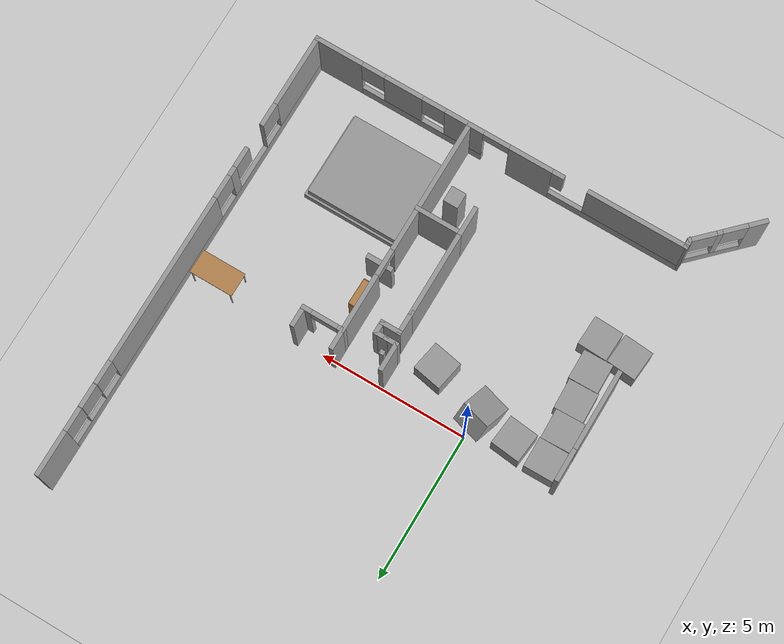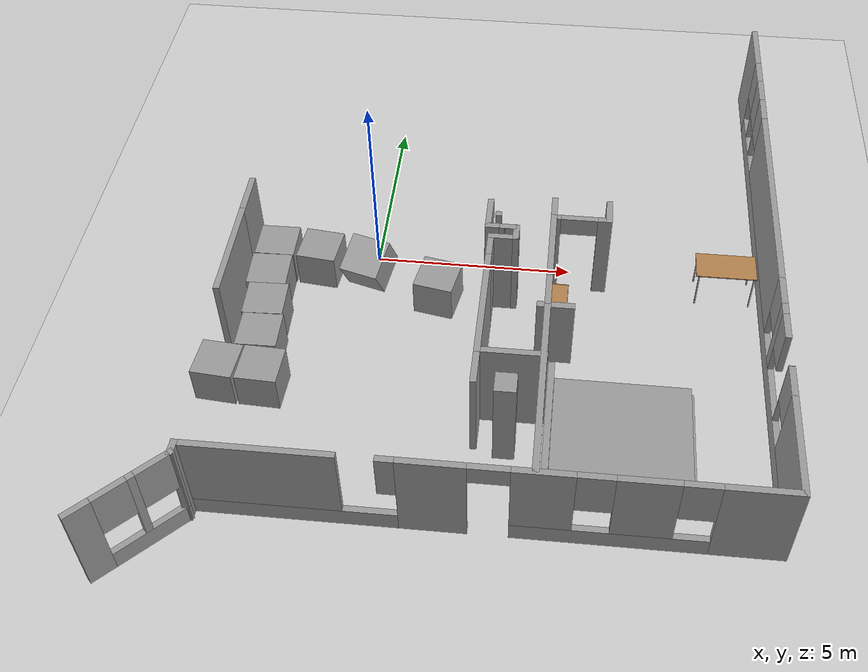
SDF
<sdf version="1.6">
 <world name="default">
  <model name="ground_plane">
   <static>1</static>
   <link name="link">
    <collision name="collision">
     <geometry><plane><normal>0 0 1</normal><size>100 100</size></plane></geometry>
     <surface>
      <contact><collide_bitmask>65535</collide_bitmask></contact>
      <friction><ode><mu>100</mu><mu2>50</mu2></ode></friction>
     </surface>
    </collision>
    <visual name="visual">
     <cast_shadows>0</cast_shadows>
     <geometry><plane><normal>0 0 1</normal><size>100 100</size></plane></geometry>
     <material>
      <script><uri>file://media/materials/scripts/gazebo.material</uri><name>Gazebo/Grey</name></script>
     </material>
    </visual>
   </link>
  </model>
  <model name="spruce1st">
   <pose>-3.08285 0.81707 0 0 -0 0</pose>
   <link name="Door_8">
    <collision name="Door_8_Collision">
     <geometry><box><size>0.9 0.17 2</size></box></geometry>
     <pose>0 0 1 0 -0 0</pose>
    </collision>
    <visual name="Door_8_Visual">
     <pose>0 0 1 0 -0 0</pose>
     <geometry><box><size>0.9 0.17 2</size></box></geometry>
     <material>
      <script><uri>file://media/materials/scripts/gazebo.material</uri><name>Gazebo/Grey</name></script>
     </material>
    </visual>
    <pose>7.80127 -3.77874 0 0 -0 0</pose>
   </link>
   <link name="Wall_101">
    <collision name="Wall_101_Collision">
     <geometry><box><size>0.75 0.15 2.5</size></box></geometry>
     <pose>0 0 1.25 0 -0 0</pose>
    </collision>
    <visual name="Wall_101_Visual">
     <pose>0 0 1.25 0 -0 0</pose>
     <geometry><box><size>0.75 0.15 2.5</size></box></geometry>
     <material>
      <script><uri>file://media/materials/scripts/gazebo.material</uri><name>Gazebo/Grey</name></script>
      <ambient>1 1 1 1</ambient>
     </material>
     <meta><layer>0</layer></meta>
    </visual>
    <pose>6.42946 -2.1381 0 0 -0 0</pose>
   </link>
   <link name="Wall_106">
    <collision name="Wall_106_Collision">
     <geometry><box><size>0.15 0.15 2.5</size></box></geometry>
     <pose>0 0 1.25 0 -0 0</pose>
    </collision>
    <visual name="Wall_106_Visual">
     <pose>0 0 1.25 0 -0 0</pose>
     <geometry><box><size>0.15 0.15 2.5</size></box></geometry>
     <material>
      <script><uri>file://media/materials/scripts/gazebo.material</uri><name>Gazebo/Grey</name></script>
      <ambient>0 0 0 0</ambient>
     </material>
     <meta><layer>0</layer></meta>
    </visual>
    <pose>6.25851 -1.36488 0 0 -0 0</pose>
   </link>
   <link name="Wall_107">
    <collision name="Wall_107_Collision">
     <geometry><box><size>0.5 0.15 2.5</size></box></geometry>
     <pose>0 0 1.25 0 -0 0</pose>
    </collision>
    <visual name="Wall_107_Visual">
     <pose>0 0 1.25 0 -0 0</pose>
     <geometry><box><size>0.5 0.15 2.5</size></box></geometry>
     <material>
      <script><uri>file://media/materials/scripts/gazebo.material</uri><name>Gazebo/Grey</name></script>
      <ambient>1 1 1 1</ambient>
     </material>
     <meta><layer>0</layer></meta>
    </visual>
    <pose>6.72946 -1.96311 0 0 -0 1.5708</pose>
   </link>
   <link name="Wall_108">
    <collision name="Wall_108_Collision">
     <geometry><box><size>0.5 0.15 2.5</size></box></geometry>
     <pose>0 0 1.25 0 -0 0</pose>
    </collision>
    <visual name="Wall_108_Visual">
     <pose>0 0 1.25 0 -0 0</pose>
     <geometry><box><size>0.5 0.15 2.5</size></box></geometry>
     <material>
      <script><uri>file://media/materials/scripts/gazebo.material</uri><name>Gazebo/Grey</name></script>
      <ambient>1 1 1 1</ambient>
     </material>
     <meta><layer>0</layer></meta>
    </visual>
    <pose>6.55446 -1.78811 0 0 -0 3.14159</pose>
   </link>
   <link name="Wall_109">
    <collision name="Wall_109_Collision">
     <geometry><box><size>0.5 0.15 2.5</size></box></geometry>
     <pose>0 0 1.25 0 -0 0</pose>
    </collision>
    <visual name="Wall_109_Visual">
     <pose>0 0 1.25 0 -0 0</pose>
     <geometry><box><size>0.5 0.15 2.5</size></box></geometry>
     <material>
      <script><uri>file://media/materials/scripts/gazebo.material</uri><name>Gazebo/Grey</name></script>
      <ambient>1 1 1 1</ambient>
     </material>
     <meta><layer>0</layer></meta>
    </visual>
    <pose>6.20446 -1.78811 0 0 -0 3.14159</pose>
   </link>
   <link name="Wall_110">
    <collision name="Wall_110_Collision">
     <geometry><box><size>1 0.15 2.5</size></box></geometry>
     <pose>0 0 1.25 0 -0 0</pose>
    </collision>
    <visual name="Wall_110_Visual">
     <pose>0 0 1.25 0 -0 0</pose>
     <geometry><box><size>1 0.15 2.5</size></box></geometry>
     <material>
      <script><uri>file://media/materials/scripts/gazebo.material</uri><name>Gazebo/Grey</name></script>
      <ambient>1 1 1 1</ambient>
     </material>
     <meta><layer>0</layer></meta>
    </visual>
    <pose>6.02946 -1.3631 0 0 -0 1.5708</pose>
   </link>
   <link name="Wall_122">
    <pose>-0.696788 -9.83939 0 0 -0 0.785398</pose>
    <visual name="Wall_122_Visual_0">
     <pose>-0.939341 0 1.25 0 -0 0</pose>
     <geometry><box><size>0.621317 0.15 2.5</size></box></geometry>
     <material>
      <script><uri>file://media/materials/scripts/gazebo.material</uri><name>Gazebo/Grey</name></script>
      <ambient>1 1 1 1</ambient>
     </material>
     <meta><layer>0</layer></meta>
    </visual>
    <collision name="Wall_122_Collision_0">
     <geometry><box><size>0.621317 0.15 2.5</size></box></geometry>
     <pose>-0.939341 0 1.25 0 -0 0</pose>
    </collision>
    <visual name="Wall_122_Visual_1">
     <pose>0.310659 0 0.25 0 -0 0</pose>
     <geometry><box><size>1.87868 0.15 0.5</size></box></geometry>
     <material>
      <script><uri>file://media/materials/scripts/gazebo.material</uri><name>Gazebo/Grey</name></script>
      <ambient>1 1 1 1</ambient>
     </material>
     <meta><layer>0</layer></meta>
    </visual>
    <collision name="Wall_122_Collision_1">
     <geometry><box><size>1.87868 0.15 0.5</size></box></geometry>
     <pose>0.310659 0 0.25 0 -0 0</pose>
    </collision>
    <visual name="Wall_122_Visual_2">
     <pose>0.257222 0 1.5 0 -0 0</pose>
     <geometry><box><size>0.17181 0.15 2</size></box></geometry>
     <material>
      <script><uri>file://media/materials/scripts/gazebo.material</uri><name>Gazebo/Grey</name></script>
      <ambient>1 1 1 1</ambient>
     </material>
     <meta><layer>0</layer></meta>
    </visual>
    <collision name="Wall_122_Collision_2">
     <geometry><box><size>0.17181 0.15 2</size></box></geometry>
     <pose>0.257222 0 1.5 0 -0 0</pose>
    </collision>
    <visual name="Wall_122_Visual_3">
     <pose>1.19656 0 1.5 0 -0 0</pose>
     <geometry><box><size>0.106873 0.15 2</size></box></geometry>
     <material>
      <script><uri>file://media/materials/scripts/gazebo.material</uri><name>Gazebo/Grey</name></script>
      <ambient>1 1 1 1</ambient>
     </material>
     <meta><layer>0</layer></meta>
    </visual>
    <collision name="Wall_122_Collision_3">
     <geometry><box><size>0.106873 0.15 2</size></box></geometry>
     <pose>1.19656 0 1.5 0 -0 0</pose>
    </collision>
    <visual name="Wall_122_Visual_4">
     <pose>-0.228683 0 1.9 0 -0 0</pose>
     <geometry><box><size>0.8 0.15 1.2</size></box></geometry>
     <material>
      <script><uri>file://media/materials/scripts/gazebo.material</uri><name>Gazebo/Grey</name></script>
      <ambient>1 1 1 1</ambient>
     </material>
     <meta><layer>0</layer></meta>
    </visual>
    <collision name="Wall_122_Collision_4">
     <geometry><box><size>0.8 0.15 1.2</size></box></geometry>
     <pose>-0.228683 0 1.9 0 -0 0</pose>
    </collision>
    <visual name="Wall_122_Visual_5">
     <pose>0.743127 0 1.9 0 -0 0</pose>
     <geometry><box><size>0.8 0.15 1.2</size></box></geometry>
     <material>
      <script><uri>file://media/materials/scripts/gazebo.material</uri><name>Gazebo/Grey</name></script>
      <ambient>1 1 1 1</ambient>
     </material>
     <meta><layer>0</layer></meta>
    </visual>
    <collision name="Wall_122_Collision_5">
     <geometry><box><size>0.8 0.15 1.2</size></box></geometry>
     <pose>0.743127 0 1.9 0 -0 0</pose>
    </collision>
   </link>
   <link name="Wall_126">
    <pose>6.5721 -8.75726 0 0 -0 3.14159</pose>
    <visual name="Wall_126_Visual_0">
     <pose>-5.65811 0 1.25 0 -0 0</pose>
     <geometry><box><size>1.68378 0.15 2.5</size></box></geometry>
     <material>
      <script><uri>file://media/materials/scripts/gazebo.material</uri><name>Gazebo/Grey</name></script>
      <ambient>1 1 1 1</ambient>
     </material>
     <meta><layer>0</layer></meta>
    </visual>
    <collision name="Wall_126_Collision_0">
     <geometry><box><size>1.68378 0.15 2.5</size></box></geometry>
     <pose>-5.65811 0 1.25 0 -0 0</pose>
    </collision>
    <visual name="Wall_126_Visual_1">
     <pose>1.10617 0 1.25 0 -0 0</pose>
     <geometry><box><size>1.49148 0.15 2.5</size></box></geometry>
     <material>
      <script><uri>file://media/materials/scripts/gazebo.material</uri><name>Gazebo/Grey</name></script>
      <ambient>1 1 1 1</ambient>
     </material>
     <meta><layer>0</layer></meta>
    </visual>
    <collision name="Wall_126_Collision_1">
     <geometry><box><size>1.49148 0.15 2.5</size></box></geometry>
     <pose>1.10617 0 1.25 0 -0 0</pose>
    </collision>
    <visual name="Wall_126_Visual_2">
     <pose>-2.67789 0 0.25 0 -0 0</pose>
     <geometry><box><size>4.27664 0.15 0.5</size></box></geometry>
     <material>
      <script><uri>file://media/materials/scripts/gazebo.material</uri><name>Gazebo/Grey</name></script>
      <ambient>1 1 1 1</ambient>
     </material>
     <meta><layer>0</layer></meta>
    </visual>
    <collision name="Wall_126_Collision_2">
     <geometry><box><size>4.27664 0.15 0.5</size></box></geometry>
     <pose>-2.67789 0 0.25 0 -0 0</pose>
    </collision>
    <visual name="Wall_126_Visual_3">
     <pose>4.17595 0 0.25 0 -0 0</pose>
     <geometry><box><size>4.6481 0.15 0.5</size></box></geometry>
     <material>
      <script><uri>file://media/materials/scripts/gazebo.material</uri><name>Gazebo/Grey</name></script>
      <ambient>1 1 1 1</ambient>
     </material>
     <meta><layer>0</layer></meta>
    </visual>
    <collision name="Wall_126_Collision_3">
     <geometry><box><size>4.6481 0.15 0.5</size></box></geometry>
     <pose>4.17595 0 0.25 0 -0 0</pose>
    </collision>
    <visual name="Wall_126_Visual_4">
     <pose>-3.34728 0 1.5 0 -0 0</pose>
     <geometry><box><size>1.33787 0.15 2</size></box></geometry>
     <material>
      <script><uri>file://media/materials/scripts/gazebo.material</uri><name>Gazebo/Grey</name></script>
      <ambient>1 1 1 1</ambient>
     </material>
     <meta><layer>0</layer></meta>
    </visual>
    <collision name="Wall_126_Collision_4">
     <geometry><box><size>1.33787 0.15 2</size></box></geometry>
     <pose>-3.34728 0 1.5 0 -0 0</pose>
    </collision>
    <visual name="Wall_126_Visual_5">
     <pose>-1.20896 0 1.5 0 -0 0</pose>
     <geometry><box><size>1.33877 0.15 2</size></box></geometry>
     <material>
      <script><uri>file://media/materials/scripts/gazebo.material</uri><name>Gazebo/Grey</name></script>
      <ambient>1 1 1 1</ambient>
     </material>
     <meta><layer>0</layer></meta>
    </visual>
    <collision name="Wall_126_Collision_5">
     <geometry><box><size>1.33877 0.15 2</size></box></geometry>
     <pose>-1.20896 0 1.5 0 -0 0</pose>
    </collision>
    <visual name="Wall_126_Visual_6">
     <pose>-1.20896 0 1.5 0 -0 0</pose>
     <geometry><box><size>1.33877 0.15 2</size></box></geometry>
     <material>
      <script><uri>file://media/materials/scripts/gazebo.material</uri><name>Gazebo/Grey</name></script>
      <ambient>1 1 1 1</ambient>
     </material>
     <meta><layer>0</layer></meta>
    </visual>
    <collision name="Wall_126_Collision_6">
     <geometry><box><size>1.33877 0.15 2</size></box></geometry>
     <pose>-1.20896 0 1.5 0 -0 0</pose>
    </collision>
    <visual name="Wall_126_Visual_7">
     <pose>4.77956 0 1.5 0 -0 0</pose>
     <geometry><box><size>3.44088 0.15 2</size></box></geometry>
     <material>
      <script><uri>file://media/materials/scripts/gazebo.material</uri><name>Gazebo/Grey</name></script>
      <ambient>1 1 1 1</ambient>
     </material>
     <meta><layer>0</layer></meta>
    </visual>
    <collision name="Wall_126_Collision_7">
     <geometry><box><size>3.44088 0.15 2</size></box></geometry>
     <pose>4.77956 0 1.5 0 -0 0</pose>
    </collision>
    <visual name="Wall_126_Visual_8">
     <pose>-4.41622 0 1.9 0 -0 0</pose>
     <geometry><box><size>0.8 0.15 1.2</size></box></geometry>
     <material>
      <script><uri>file://media/materials/scripts/gazebo.material</uri><name>Gazebo/Grey</name></script>
      <ambient>1 1 1 1</ambient>
     </material>
     <meta><layer>0</layer></meta>
    </visual>
    <collision name="Wall_126_Collision_8">
     <geometry><box><size>0.8 0.15 1.2</size></box></geometry>
     <pose>-4.41622 0 1.9 0 -0 0</pose>
    </collision>
    <visual name="Wall_126_Visual_9">
     <pose>2.05551 0 1.9 0 -0 0</pose>
     <geometry><box><size>0.407213 0.15 1.2</size></box></geometry>
     <material>
      <script><uri>file://media/materials/scripts/gazebo.material</uri><name>Gazebo/Grey</name></script>
      <ambient>1 1 1 1</ambient>
     </material>
     <meta><layer>0</layer></meta>
    </visual>
    <collision name="Wall_126_Collision_9">
     <geometry><box><size>0.407213 0.15 1.2</size></box></geometry>
     <pose>2.05551 0 1.9 0 -0 0</pose>
    </collision>
    <visual name="Wall_126_Visual_10">
     <pose>-2.27834 0 1.9 0 -0 0</pose>
     <geometry><box><size>0.8 0.15 1.2</size></box></geometry>
     <material>
      <script><uri>file://media/materials/scripts/gazebo.material</uri><name>Gazebo/Grey</name></script>
      <ambient>1 1 1 1</ambient>
     </material>
     <meta><layer>0</layer></meta>
    </visual>
    <collision name="Wall_126_Collision_10">
     <geometry><box><size>0.8 0.15 1.2</size></box></geometry>
     <pose>-2.27834 0 1.9 0 -0 0</pose>
    </collision>
    <visual name="Wall_126_Visual_11">
     <pose>-0.089573 0 2.25 0 -0 0</pose>
     <geometry><box><size>0.9 0.15 0.5</size></box></geometry>
     <material>
      <script><uri>file://media/materials/scripts/gazebo.material</uri><name>Gazebo/Grey</name></script>
      <ambient>1 1 1 1</ambient>
     </material>
     <meta><layer>0</layer></meta>
    </visual>
    <collision name="Wall_126_Collision_11">
     <geometry><box><size>0.9 0.15 0.5</size></box></geometry>
     <pose>-0.089573 0 2.25 0 -0 0</pose>
    </collision>
    <visual name="Wall_126_Visual_12">
     <pose>-0.089573 0 2.25 0 -0 0</pose>
     <geometry><box><size>0.9 0.15 0.5</size></box></geometry>
     <material>
      <script><uri>file://media/materials/scripts/gazebo.material</uri><name>Gazebo/Grey</name></script>
      <ambient>1 1 1 1</ambient>
     </material>
     <meta><layer>0</layer></meta>
    </visual>
    <collision name="Wall_126_Collision_12">
     <geometry><box><size>0.9 0.15 0.5</size></box></geometry>
     <pose>-0.089573 0 2.25 0 -0 0</pose>
    </collision>
   </link>
   <link name="Wall_127">
    <collision name="Wall_127_Collision">
     <geometry><box><size>0.401612 0.15 2.5</size></box></geometry>
     <pose>0 0 1.25 0 -0 0</pose>
    </collision>
    <visual name="Wall_127_Visual">
     <pose>0 0 1.25 0 -0 0</pose>
     <geometry><box><size>0.401612 0.15 2.5</size></box></geometry>
     <material>
      <script><uri>file://media/materials/scripts/gazebo.material</uri><name>Gazebo/Grey</name></script>
      <ambient>1 1 1 1</ambient>
     </material>
     <meta><layer>0</layer></meta>
    </visual>
    <pose>0.140582 -8.8829 0 0 0 -1.62264</pose>
   </link>
   <link name="Wall_41">
    <pose>12.9971 -0.957263 0 0 0 -1.5708</pose>
    <visual name="Wall_41_Visual_0">
     <pose>-7.10477 0 1.25 0 -0 0</pose>
     <geometry><box><size>1.54045 0.15 2.5</size></box></geometry>
     <material>
      <script><uri>file://media/materials/scripts/gazebo.material</uri><name>Gazebo/Grey</name></script>
      <ambient>1 1 1 1</ambient>
     </material>
     <meta><layer>0</layer></meta>
    </visual>
    <collision name="Wall_41_Collision_0">
     <geometry><box><size>1.54045 0.15 2.5</size></box></geometry>
     <pose>-7.10477 0 1.25 0 -0 0</pose>
    </collision>
    <visual name="Wall_41_Visual_1">
     <pose>0.770227 0 0.25 0 -0 0</pose>
     <geometry><box><size>14.2095 0.15 0.5</size></box></geometry>
     <material>
      <script><uri>file://media/materials/scripts/gazebo.material</uri><name>Gazebo/Grey</name></script>
      <ambient>1 1 1 1</ambient>
     </material>
     <meta><layer>0</layer></meta>
    </visual>
    <collision name="Wall_41_Collision_1">
     <geometry><box><size>14.2095 0.15 0.5</size></box></geometry>
     <pose>0.770227 0 0.25 0 -0 0</pose>
    </collision>
    <visual name="Wall_41_Visual_2">
     <pose>-5.52733 0 1.5 0 -0 0</pose>
     <geometry><box><size>0.014427 0.15 2</size></box></geometry>
     <material>
      <script><uri>file://media/materials/scripts/gazebo.material</uri><name>Gazebo/Grey</name></script>
      <ambient>1 1 1 1</ambient>
     </material>
     <meta><layer>0</layer></meta>
    </visual>
    <collision name="Wall_41_Collision_2">
     <geometry><box><size>0.014427 0.15 2</size></box></geometry>
     <pose>-5.52733 0 1.5 0 -0 0</pose>
    </collision>
    <visual name="Wall_41_Visual_3">
     <pose>-4.71291 0 1.5 0 -0 0</pose>
     <geometry><box><size>0.014427 0.15 2</size></box></geometry>
     <material>
      <script><uri>file://media/materials/scripts/gazebo.material</uri><name>Gazebo/Grey</name></script>
      <ambient>1 1 1 1</ambient>
     </material>
     <meta><layer>0</layer></meta>
    </visual>
    <collision name="Wall_41_Collision_3">
     <geometry><box><size>0.014427 0.15 2</size></box></geometry>
     <pose>-4.71291 0 1.5 0 -0 0</pose>
    </collision>
    <visual name="Wall_41_Visual_4">
     <pose>-0.997084 0 1.5 0 -0 0</pose>
     <geometry><box><size>5.81722 0.15 2</size></box></geometry>
     <material>
      <script><uri>file://media/materials/scripts/gazebo.material</uri><name>Gazebo/Grey</name></script>
      <ambient>1 1 1 1</ambient>
     </material>
     <meta><layer>0</layer></meta>
    </visual>
    <collision name="Wall_41_Collision_4">
     <geometry><box><size>5.81722 0.15 2</size></box></geometry>
     <pose>-0.997084 0 1.5 0 -0 0</pose>
    </collision>
    <visual name="Wall_41_Visual_5">
     <pose>2.87144 0 1.5 0 -0 0</pose>
     <geometry><box><size>0.319837 0.15 2</size></box></geometry>
     <material>
      <script><uri>file://media/materials/scripts/gazebo.material</uri><name>Gazebo/Grey</name></script>
      <ambient>1 1 1 1</ambient>
     </material>
     <meta><layer>0</layer></meta>
    </visual>
    <collision name="Wall_41_Collision_5">
     <geometry><box><size>0.319837 0.15 2</size></box></geometry>
     <pose>2.87144 0 1.5 0 -0 0</pose>
    </collision>
    <visual name="Wall_41_Visual_6">
     <pose>4.5512 0 1.5 0 -0 0</pose>
     <geometry><box><size>0.014426 0.15 2</size></box></geometry>
     <material>
      <script><uri>file://media/materials/scripts/gazebo.material</uri><name>Gazebo/Grey</name></script>
      <ambient>1 1 1 1</ambient>
     </material>
     <meta><layer>0</layer></meta>
    </visual>
    <collision name="Wall_41_Collision_6">
     <geometry><box><size>0.014426 0.15 2</size></box></geometry>
     <pose>4.5512 0 1.5 0 -0 0</pose>
    </collision>
    <visual name="Wall_41_Visual_7">
     <pose>6.61671 0 1.5 0 -0 0</pose>
     <geometry><box><size>2.51659 0.15 2</size></box></geometry>
     <material>
      <script><uri>file://media/materials/scripts/gazebo.material</uri><name>Gazebo/Grey</name></script>
      <ambient>1 1 1 1</ambient>
     </material>
     <meta><layer>0</layer></meta>
    </visual>
    <collision name="Wall_41_Collision_7">
     <geometry><box><size>2.51659 0.15 2</size></box></geometry>
     <pose>6.61671 0 1.5 0 -0 0</pose>
    </collision>
    <visual name="Wall_41_Visual_8">
     <pose>-5.93455 0 1.9 0 -0 0</pose>
     <geometry><box><size>0.8 0.15 1.2</size></box></geometry>
     <material>
      <script><uri>file://media/materials/scripts/gazebo.material</uri><name>Gazebo/Grey</name></script>
      <ambient>1 1 1 1</ambient>
     </material>
     <meta><layer>0</layer></meta>
    </visual>
    <collision name="Wall_41_Collision_8">
     <geometry><box><size>0.8 0.15 1.2</size></box></geometry>
     <pose>-5.93455 0 1.9 0 -0 0</pose>
    </collision>
    <visual name="Wall_41_Visual_9">
     <pose>-5.12012 0 1.9 0 -0 0</pose>
     <geometry><box><size>0.8 0.15 1.2</size></box></geometry>
     <material>
      <script><uri>file://media/materials/scripts/gazebo.material</uri><name>Gazebo/Grey</name></script>
      <ambient>1 1 1 1</ambient>
     </material>
     <meta><layer>0</layer></meta>
    </visual>
    <collision name="Wall_41_Collision_9">
     <geometry><box><size>0.8 0.15 1.2</size></box></geometry>
     <pose>-5.12012 0 1.9 0 -0 0</pose>
    </collision>
    <visual name="Wall_41_Visual_10">
     <pose>-4.30569 0 1.9 0 -0 0</pose>
     <geometry><box><size>0.8 0.15 1.2</size></box></geometry>
     <material>
      <script><uri>file://media/materials/scripts/gazebo.material</uri><name>Gazebo/Grey</name></script>
      <ambient>1 1 1 1</ambient>
     </material>
     <meta><layer>0</layer></meta>
    </visual>
    <collision name="Wall_41_Collision_10">
     <geometry><box><size>0.8 0.15 1.2</size></box></geometry>
     <pose>-4.30569 0 1.9 0 -0 0</pose>
    </collision>
    <visual name="Wall_41_Visual_11">
     <pose>2.31152 0 1.9 0 -0 0</pose>
     <geometry><box><size>0.8 0.15 1.2</size></box></geometry>
     <material>
      <script><uri>file://media/materials/scripts/gazebo.material</uri><name>Gazebo/Grey</name></script>
      <ambient>1 1 1 1</ambient>
     </material>
     <meta><layer>0</layer></meta>
    </visual>
    <collision name="Wall_41_Collision_11">
     <geometry><box><size>0.8 0.15 1.2</size></box></geometry>
     <pose>2.31152 0 1.9 0 -0 0</pose>
    </collision>
    <visual name="Wall_41_Visual_12">
     <pose>3.38767 0 1.9 0 -0 0</pose>
     <geometry><box><size>0.712624 0.15 1.2</size></box></geometry>
     <material>
      <script><uri>file://media/materials/scripts/gazebo.material</uri><name>Gazebo/Grey</name></script>
      <ambient>1 1 1 1</ambient>
     </material>
     <meta><layer>0</layer></meta>
    </visual>
    <collision name="Wall_41_Collision_12">
     <geometry><box><size>0.712624 0.15 1.2</size></box></geometry>
     <pose>3.38767 0 1.9 0 -0 0</pose>
    </collision>
    <visual name="Wall_41_Visual_13">
     <pose>4.95841 0 1.9 0 -0 0</pose>
     <geometry><box><size>0.8 0.15 1.2</size></box></geometry>
     <material>
      <script><uri>file://media/materials/scripts/gazebo.material</uri><name>Gazebo/Grey</name></script>
      <ambient>1 1 1 1</ambient>
     </material>
     <meta><layer>0</layer></meta>
    </visual>
    <collision name="Wall_41_Collision_13">
     <geometry><box><size>0.8 0.15 1.2</size></box></geometry>
     <pose>4.95841 0 1.9 0 -0 0</pose>
    </collision>
   </link>
   <link name="Wall_48">
    <collision name="Wall_48_Collision">
     <geometry><box><size>2.70084 0.15 2.5</size></box></geometry>
     <pose>0 0 1.25 0 -0 0</pose>
    </collision>
    <visual name="Wall_48_Visual">
     <pose>0 0 1.25 0 -0 0</pose>
     <geometry><box><size>2.70084 0.15 2.5</size></box></geometry>
     <material>
      <script><uri>file://media/materials/scripts/gazebo.material</uri><name>Gazebo/Grey</name></script>
      <ambient>1 1 1 1</ambient>
     </material>
     <meta><layer>0</layer></meta>
    </visual>
    <pose>-0.038701 -3.12072 0 0 -0 1.5708</pose>
   </link>
   <link name="Wall_53">
    <collision name="Wall_53_Collision">
     <geometry><box><size>1.25 0.15 2.5</size></box></geometry>
     <pose>0 0 1.25 0 -0 0</pose>
    </collision>
    <visual name="Wall_53_Visual">
     <pose>0 0 1.25 0 -0 0</pose>
     <geometry><box><size>1.25 0.15 2.5</size></box></geometry>
     <material>
      <script><uri>file://media/materials/scripts/gazebo.material</uri><name>Gazebo/Grey</name></script>
      <ambient>1 1 1 1</ambient>
     </material>
     <meta><layer>0</layer></meta>
    </visual>
    <pose>-0.038701 -1.2953 0 0 -0 1.5708</pose>
   </link>
   <link name="Wall_69">
    <collision name="Wall_69_Collision">
     <geometry><box><size>0.75 0.15 2.5</size></box></geometry>
     <pose>0 0 1.25 0 -0 0</pose>
    </collision>
    <visual name="Wall_69_Visual">
     <pose>0 0 1.25 0 -0 0</pose>
     <geometry><box><size>0.75 0.15 2.5</size></box></geometry>
     <material>
      <script><uri>file://media/materials/scripts/gazebo.material</uri><name>Gazebo/Grey</name></script>
      <ambient>1 1 1 1</ambient>
     </material>
     <meta><layer>0</layer></meta>
    </visual>
    <pose>8.9613 -1.0453 0 0 0 -1.5708</pose>
   </link>
   <link name="Wall_70">
    <pose>8.2863 -1.3453 0 0 -0 3.14159</pose>
    <visual name="Wall_70_Visual_0">
     <pose>-0.573224 0 1.25 0 -0 0</pose>
     <geometry><box><size>0.353552 0.15 2.5</size></box></geometry>
     <material>
      <script><uri>file://media/materials/scripts/gazebo.material</uri><name>Gazebo/Grey</name></script>
      <ambient>1 1 1 1</ambient>
     </material>
     <meta><layer>0</layer></meta>
    </visual>
    <collision name="Wall_70_Collision_0">
     <geometry><box><size>0.353552 0.15 2.5</size></box></geometry>
     <pose>-0.573224 0 1.25 0 -0 0</pose>
    </collision>
    <visual name="Wall_70_Visual_1">
     <pose>0.626776 0 1.25 0 -0 0</pose>
     <geometry><box><size>0.246448 0.15 2.5</size></box></geometry>
     <material>
      <script><uri>file://media/materials/scripts/gazebo.material</uri><name>Gazebo/Grey</name></script>
      <ambient>1 1 1 1</ambient>
     </material>
     <meta><layer>0</layer></meta>
    </visual>
    <collision name="Wall_70_Collision_1">
     <geometry><box><size>0.246448 0.15 2.5</size></box></geometry>
     <pose>0.626776 0 1.25 0 -0 0</pose>
    </collision>
    <visual name="Wall_70_Visual_2">
     <pose>0.053552 0 2.25 0 -0 0</pose>
     <geometry><box><size>0.9 0.15 0.5</size></box></geometry>
     <material>
      <script><uri>file://media/materials/scripts/gazebo.material</uri><name>Gazebo/Grey</name></script>
      <ambient>1 1 1 1</ambient>
     </material>
     <meta><layer>0</layer></meta>
    </visual>
    <collision name="Wall_70_Collision_2">
     <geometry><box><size>0.9 0.15 0.5</size></box></geometry>
     <pose>0.053552 0 2.25 0 -0 0</pose>
    </collision>
   </link>
   <link name="Wall_77">
    <collision name="Wall_77_Collision">
     <geometry><box><size>0.75 0.15 2.5</size></box></geometry>
     <pose>0 0 1.25 0 -0 0</pose>
    </collision>
    <visual name="Wall_77_Visual">
     <pose>0 0 1.25 0 -0 0</pose>
     <geometry><box><size>0.75 0.15 2.5</size></box></geometry>
     <material>
      <script><uri>file://media/materials/scripts/gazebo.material</uri><name>Gazebo/Grey</name></script>
      <ambient>1 1 1 1</ambient>
     </material>
     <meta><layer>0</layer></meta>
    </visual>
    <pose>7.6113 -1.0453 0 0 -0 1.5708</pose>
   </link>
   <link name="Wall_80">
    <pose>7.6113 -5.0203 0 0 0 -1.5708</pose>
    <visual name="Wall_80_Visual_0">
     <pose>-2.73626 0 1.25 0 -0 0</pose>
     <geometry><box><size>2.02747 0.15 2.5</size></box></geometry>
     <material>
      <script><uri>file://media/materials/scripts/gazebo.material</uri><name>Gazebo/Grey</name></script>
      <ambient>1 1 1 1</ambient>
     </material>
     <meta><layer>0</layer></meta>
    </visual>
    <collision name="Wall_80_Collision_0">
     <geometry><box><size>2.02747 0.15 2.5</size></box></geometry>
     <pose>-2.73626 0 1.25 0 -0 0</pose>
    </collision>
    <visual name="Wall_80_Visual_1">
     <pose>1.46374 0 1.25 0 -0 0</pose>
     <geometry><box><size>4.57253 0.15 2.5</size></box></geometry>
     <material>
      <script><uri>file://media/materials/scripts/gazebo.material</uri><name>Gazebo/Grey</name></script>
      <ambient>1 1 1 1</ambient>
     </material>
     <meta><layer>0</layer></meta>
    </visual>
    <collision name="Wall_80_Collision_1">
     <geometry><box><size>4.57253 0.15 2.5</size></box></geometry>
     <pose>1.46374 0 1.25 0 -0 0</pose>
    </collision>
    <visual name="Wall_80_Visual_2">
     <pose>-1.27253 0 2.25 0 -0 0</pose>
     <geometry><box><size>0.9 0.15 0.5</size></box></geometry>
     <material>
      <script><uri>file://media/materials/scripts/gazebo.material</uri><name>Gazebo/Grey</name></script>
      <ambient>1 1 1 1</ambient>
     </material>
     <meta><layer>0</layer></meta>
    </visual>
    <collision name="Wall_80_Collision_2">
     <geometry><box><size>0.9 0.15 0.5</size></box></geometry>
     <pose>-1.27253 0 2.25 0 -0 0</pose>
    </collision>
   </link>
   <link name="Wall_91">
    <collision name="Wall_91_Collision">
     <geometry><box><size>1.50044 0.15 2.5</size></box></geometry>
     <pose>0 0 1.25 0 -0 0</pose>
    </collision>
    <visual name="Wall_91_Visual">
     <pose>0 0 1.25 0 -0 0</pose>
     <geometry><box><size>1.50044 0.15 2.5</size></box></geometry>
     <material>
      <script><uri>file://media/materials/scripts/gazebo.material</uri><name>Gazebo/Grey</name></script>
      <ambient>1 1 1 1</ambient>
     </material>
     <meta><layer>0</layer></meta>
    </visual>
    <pose>6.95481 -5.68797 0 0 -0 3.14159</pose>
   </link>
   <link name="Wall_92">
    <collision name="Wall_92_Collision">
     <geometry><box><size>1 0.15 2.5</size></box></geometry>
     <pose>0 0 1.25 0 -0 0</pose>
    </collision>
    <visual name="Wall_92_Visual">
     <pose>0 0 1.25 0 -0 0</pose>
     <geometry><box><size>1 0.15 2.5</size></box></geometry>
     <material>
      <script><uri>file://media/materials/scripts/gazebo.material</uri><name>Gazebo/Grey</name></script>
      <ambient>1 1 1 1</ambient>
     </material>
     <meta><layer>0</layer></meta>
    </visual>
    <pose>6.12946 -6.11297 0 0 0 -1.5708</pose>
   </link>
   <link name="Wall_96">
    <collision name="Wall_96_Collision">
     <geometry><box><size>3 0.15 2.5</size></box></geometry>
     <pose>0 0 1.25 0 -0 0</pose>
    </collision>
    <visual name="Wall_96_Visual">
     <pose>0 0 1.25 0 -0 0</pose>
     <geometry><box><size>3 0.15 2.5</size></box></geometry>
     <material>
      <script><uri>file://media/materials/scripts/gazebo.material</uri><name>Gazebo/Grey</name></script>
      <ambient>1 1 1 1</ambient>
     </material>
     <meta><layer>0</layer></meta>
    </visual>
    <pose>6.12946 -4.26297 0 0 -0 1.5708</pose>
   </link>
   <link name="Wall_98">
    <collision name="Wall_98_Collision">
     <geometry><box><size>0.849867 0.15 2.5</size></box></geometry>
     <pose>0 0 1.25 0 -0 0</pose>
    </collision>
    <visual name="Wall_98_Visual">
     <pose>0 0 1.25 0 -0 0</pose>
     <geometry><box><size>0.849867 0.15 2.5</size></box></geometry>
     <material>
      <script><uri>file://media/materials/scripts/gazebo.material</uri><name>Gazebo/Grey</name></script>
      <ambient>1 1 1 1</ambient>
     </material>
     <meta><layer>0</layer></meta>
    </visual>
    <pose>6.12946 -2.48804 0 0 -0 1.5708</pose>
   </link>
   <static>1</static>
  </model>
  <model name="bedtry1_clone_clone">
   <link name="link_1">
    <pose>-1.11426 0.018994 0.114995 0 -0 0</pose>
    <inertial>
     <mass>0.506131</mass>
     <inertia>
      <ixx>0.462337</ixx>
      <ixy>0</ixy>
      <ixz>0</ixz>
      <iyy>0.0441055</iyy>
      <iyz>0</iyz>
      <izz>0.420361</izz>
     </inertia>
    </inertial>
    <visual name="visual">
     <geometry><box><size>0.158906 3.15297 1.01018</size></box></geometry>
     <material>
      <lighting>1</lighting>
      <script><uri>file://media/materials/scripts/gazebo.material</uri><name>Gazebo/Grey</name></script>
      <shader type="pixel"><normal_map>__default__</normal_map></shader>
      <ambient>0.3 0.3 0.3 1</ambient>
      <diffuse>0.7 0.7 0.7 1</diffuse>
      <specular>0.01 0.01 0.01 1</specular>
      <emissive>0 0 0 1</emissive>
     </material>
    </visual>
    <collision name="collision">
     <geometry><box><size>0.158906 3.15297 1.01018</size></box></geometry>
     <surface>
      <friction>
       <ode><mu>1</mu><mu2>1</mu2><fdir1>0 0 0</fdir1><slip1>0</slip1><slip2>0</slip2></ode>
       <torsional>
        <coefficient>1</coefficient>
        <patch_radius>0</patch_radius>
        <surface_radius>0</surface_radius>
        <use_patch_radius>1</use_patch_radius>
        <ode><slip>0</slip></ode>
       </torsional>
      </friction>
      <bounce><restitution_coefficient>0</restitution_coefficient><threshold>1e+06</threshold></bounce>
      <contact>
       <collide_without_contact>0</collide_without_contact>
       <collide_without_contact_bitmask>1</collide_without_contact_bitmask>
       <collide_bitmask>1</collide_bitmask>
       <ode>
        <soft_cfm>0</soft_cfm>
        <soft_erp>0.2</soft_erp>
        <kp>1e+13</kp>
        <kd>1</kd>
        <max_vel>0.01</max_vel>
        <min_depth>0</min_depth>
       </ode>
       <bullet>
        <split_impulse>1</split_impulse>
        <split_impulse_penetration_threshold>-0.01</split_impulse_penetration_threshold>
        <soft_cfm>0</soft_cfm>
        <soft_erp>0.2</soft_erp>
        <kp>1e+13</kp>
        <kd>1</kd>
       </bullet>
      </contact>
     </surface>
    </collision>
   </link>
   <link name="link_2">
    <pose>0.540571 0.000416 -0.229697 0 -0 0</pose>
    <inertial>
     <mass>3.41387</mass>
     <inertia><ixx>2.48377</ixx><ixy>0</ixy><ixz>0</ixz><iyy>3.45159</iyy><iyz>0</iyz><izz>5.87135</izz></inertia>
    </inertial>
    <visual name="visual">
     <geometry><box><size>3.46699 2.93567 0.335414</size></box></geometry>
     <material>
      <lighting>1</lighting>
      <script><uri>file://media/materials/scripts/gazebo.material</uri><name>Gazebo/Grey</name></script>
      <shader type="pixel"><normal_map>__default__</normal_map></shader>
      <ambient>0.3 0.3 0.3 1</ambient>
      <diffuse>0.7 0.7 0.7 1</diffuse>
      <specular>0.01 0.01 0.01 1</specular>
      <emissive>0 0 0 1</emissive>
     </material>
    </visual>
    <collision name="collision">
     <geometry><box><size>3.46699 2.93567 0.335414</size></box></geometry>
     <surface>
      <friction>
       <ode><mu>1</mu><mu2>1</mu2><fdir1>0 0 0</fdir1><slip1>0</slip1><slip2>0</slip2></ode>
       <torsional>
        <coefficient>1</coefficient>
        <patch_radius>0</patch_radius>
        <surface_radius>0</surface_radius>
        <use_patch_radius>1</use_patch_radius>
        <ode><slip>0</slip></ode>
       </torsional>
      </friction>
      <bounce><restitution_coefficient>0</restitution_coefficient><threshold>1e+06</threshold></bounce>
      <contact>
       <collide_without_contact>0</collide_without_contact>
       <collide_without_contact_bitmask>1</collide_without_contact_bitmask>
       <collide_bitmask>1</collide_bitmask>
       <ode>
        <soft_cfm>0</soft_cfm>
        <soft_erp>0.2</soft_erp>
        <kp>1e+13</kp>
        <kd>1</kd>
        <max_vel>0.01</max_vel>
        <min_depth>0</min_depth>
       </ode>
       <bullet>
        <split_impulse>1</split_impulse>
        <split_impulse_penetration_threshold>-0.01</split_impulse_penetration_threshold>
        <soft_cfm>0</soft_cfm>
        <soft_erp>0.2</soft_erp>
        <kp>1e+13</kp>
        <kd>1</kd>
       </bullet>
      </contact>
     </surface>
    </collision>
   </link>
   <link name="link_3">
    <pose>0.573695 -0.01941 0.114702 0 -0 0</pose>
    <inertial>
     <mass>3.04536</mass>
     <inertia><ixx>2.05172</ixx><ixy>0</ixy><ixz>0</ixz><iyy>2.63138</iyy><iyz>0</iyz><izz>4.62552</izz></inertia>
    </inertial>
    <visual name="visual">
     <geometry><box><size>3.20239 2.82333 0.336824</size></box></geometry>
     <material>
      <lighting>1</lighting>
      <script><uri>file://media/materials/scripts/gazebo.material</uri><name>Gazebo/Grey</name></script>
      <shader type="pixel"/>
      <ambient>0.3 0.3 0.3 1</ambient>
      <diffuse>0.7 0.7 0.7 1</diffuse>
      <specular>0.01 0.01 0.01 1</specular>
      <emissive>0 0 0 1</emissive>
     </material>
    </visual>
    <collision name="collision">
     <geometry><box><size>3.20239 2.82333 0.336824</size></box></geometry>
     <surface>
      <friction>
       <ode><mu>1</mu><mu2>1</mu2><fdir1>0 0 0</fdir1><slip1>0</slip1><slip2>0</slip2></ode>
       <torsional>
        <coefficient>1</coefficient>
        <patch_radius>0</patch_radius>
        <surface_radius>0</surface_radius>
        <use_patch_radius>1</use_patch_radius>
        <ode><slip>0</slip></ode>
       </torsional>
      </friction>
      <bounce><restitution_coefficient>0</restitution_coefficient><threshold>1e+06</threshold></bounce>
      <contact>
       <collide_without_contact>0</collide_without_contact>
       <collide_without_contact_bitmask>1</collide_without_contact_bitmask>
       <collide_bitmask>1</collide_bitmask>
       <ode>
        <soft_cfm>0</soft_cfm>
        <soft_erp>0.2</soft_erp>
        <kp>1e+13</kp>
        <kd>1</kd>
        <max_vel>0.01</max_vel>
        <min_depth>0</min_depth>
       </ode>
       <bullet>
        <split_impulse>1</split_impulse>
        <split_impulse_penetration_threshold>-0.01</split_impulse_penetration_threshold>
        <soft_cfm>0</soft_cfm>
        <soft_erp>0.2</soft_erp>
        <kp>1e+13</kp>
        <kd>1</kd>
       </bullet>
      </contact>
     </surface>
    </collision>
   </link>
   <joint name="link_1_JOINT_2" type="fixed">
    <parent>link_1</parent>
    <child>link_3</child>
    <physics>
     <ode><limit><cfm>0</cfm><erp>0.2</erp></limit><suspension><cfm>0</cfm><erp>0.2</erp></suspension></ode>
    </physics>
   </joint>
   <joint name="link_2_JOINT_0" type="fixed">
    <parent>link_2</parent>
    <child>link_1</child>
    <physics>
     <ode><limit><cfm>0</cfm><erp>0.2</erp></limit><suspension><cfm>0</cfm><erp>0.2</erp></suspension></ode>
    </physics>
   </joint>
   <joint name="link_3_JOINT_1" type="fixed">
    <parent>link_3</parent>
    <child>link_2</child>
    <physics>
     <ode><limit><cfm>0</cfm><erp>0.2</erp></limit><suspension><cfm>0</cfm><erp>0.2</erp></suspension></ode>
    </physics>
   </joint>
   <static>0</static>
   <pose>5.82538 -5.47789 0.397404 0 0 -0.001865</pose>
  </model>
  <model name="table">
   <static>1</static>
   <link name="link">
    <collision name="surface">
     <pose>0 0 1 0 -0 0</pose>
     <geometry><box><size>1.5 0.8 0.03</size></box></geometry>
     <surface><friction><ode><mu>0.6</mu><mu2>0.6</mu2></ode></friction></surface>
    </collision>
    <visual name="visual1">
     <pose>0 0 1 0 -0 0</pose>
     <geometry><box><size>1.5 0.8 0.03</size></box></geometry>
     <material>
      <script><uri>file://media/materials/scripts/gazebo.material</uri><name>Gazebo/Wood</name></script>
     </material>
    </visual>
    <collision name="front_left_leg">
     <pose>0.68 0.38 0.5 0 -0 0</pose>
     <geometry><cylinder><radius>0.02</radius><length>1</length></cylinder></geometry>
    </collision>
    <visual name="front_left_leg">
     <pose>0.68 0.38 0.5 0 -0 0</pose>
     <geometry><cylinder><radius>0.02</radius><length>1</length></cylinder></geometry>
     <material>
      <script><uri>file://media/materials/scripts/gazebo.material</uri><name>Gazebo/Grey</name></script>
     </material>
    </visual>
    <collision name="front_right_leg">
     <pose>0.68 -0.38 0.5 0 -0 0</pose>
     <geometry><cylinder><radius>0.02</radius><length>1</length></cylinder></geometry>
    </collision>
    <visual name="front_right_leg">
     <pose>0.68 -0.38 0.5 0 -0 0</pose>
     <geometry><cylinder><radius>0.02</radius><length>1</length></cylinder></geometry>
     <material>
      <script><uri>file://media/materials/scripts/gazebo.material</uri><name>Gazebo/Grey</name></script>
     </material>
    </visual>
    <collision name="back_right_leg">
     <pose>-0.68 -0.38 0.5 0 -0 0</pose>
     <geometry><cylinder><radius>0.02</radius><length>1</length></cylinder></geometry>
    </collision>
    <visual name="back_right_leg">
     <pose>-0.68 -0.38 0.5 0 -0 0</pose>
     <geometry><cylinder><radius>0.02</radius><length>1</length></cylinder></geometry>
     <material>
      <script><uri>file://media/materials/scripts/gazebo.material</uri><name>Gazebo/Grey</name></script>
     </material>
    </visual>
    <collision name="back_left_leg">
     <pose>-0.68 0.38 0.5 0 -0 0</pose>
     <geometry><cylinder><radius>0.02</radius><length>1</length></cylinder></geometry>
    </collision>
    <visual name="back_left_leg">
     <pose>-0.68 0.38 0.5 0 -0 0</pose>
     <geometry><cylinder><radius>0.02</radius><length>1</length></cylinder></geometry>
     <material>
      <script><uri>file://media/materials/scripts/gazebo.material</uri><name>Gazebo/Grey</name></script>
     </material>
    </visual>
   </link>
   <pose>8.92875 -0.374107 0 0 -0 0</pose>
  </model>
  <model name="bookshelf_clone_1">
   <static>1</static>
   <link name="link">
    <inertial><mass>1</mass></inertial>
    <collision name="back">
     <pose>0 0.005 0.6 0 -0 0</pose>
     <geometry><box><size>0.9 0.01 1.2</size></box></geometry>
    </collision>
    <visual name="visual1">
     <pose>0 0.005 0.6 0 -0 0</pose>
     <geometry><box><size>0.9 0.01 1.2</size></box></geometry>
     <material>
      <script><uri>file://media/materials/scripts/gazebo.material</uri><name>Gazebo/Wood</name></script>
     </material>
    </visual>
    <collision name="left_side">
     <pose>0.45 -0.195 0.6 0 -0 0</pose>
     <geometry><box><size>0.02 0.4 1.2</size></box></geometry>
    </collision>
    <visual name="visual2">
     <pose>0.45 -0.195 0.6 0 -0 0</pose>
     <geometry><box><size>0.02 0.4 1.2</size></box></geometry>
     <material>
      <script><uri>file://media/materials/scripts/gazebo.material</uri><name>Gazebo/Wood</name></script>
     </material>
    </visual>
    <collision name="right_side">
     <pose>-0.45 -0.195 0.6 0 -0 0</pose>
     <geometry><box><size>0.02 0.4 1.2</size></box></geometry>
    </collision>
    <visual name="visual3">
     <pose>-0.45 -0.195 0.6 0 -0 0</pose>
     <geometry><box><size>0.02 0.4 1.2</size></box></geometry>
     <material>
      <script><uri>file://media/materials/scripts/gazebo.material</uri><name>Gazebo/Wood</name></script>
     </material>
    </visual>
    <collision name="bottom">
     <pose>0 -0.195 0.03 0 -0 0</pose>
     <geometry><box><size>0.88 0.4 0.06</size></box></geometry>
    </collision>
    <visual name="visual4">
     <pose>0 -0.195 0.03 0 -0 0</pose>
     <geometry><box><size>0.88 0.4 0.06</size></box></geometry>
     <material>
      <script><uri>file://media/materials/scripts/gazebo.material</uri><name>Gazebo/Wood</name></script>
     </material>
    </visual>
    <collision name="top">
     <pose>0 -0.195 1.19 0 -0 0</pose>
     <geometry><box><size>0.88 0.4 0.02</size></box></geometry>
    </collision>
    <visual name="visual5">
     <pose>0 -0.195 1.19 0 -0 0</pose>
     <geometry><box><size>0.88 0.4 0.02</size></box></geometry>
     <material>
      <script><uri>file://media/materials/scripts/gazebo.material</uri><name>Gazebo/Wood</name></script>
     </material>
    </visual>
    <collision name="low_shelf">
     <pose>0 -0.195 0.43 0 -0 0</pose>
     <geometry><box><size>0.88 0.4 0.02</size></box></geometry>
    </collision>
    <visual name="visual6">
     <pose>0 -0.195 0.43 0 -0 0</pose>
     <geometry><box><size>0.88 0.4 0.02</size></box></geometry>
     <material>
      <script><uri>file://media/materials/scripts/gazebo.material</uri><name>Gazebo/Wood</name></script>
     </material>
    </visual>
    <collision name="high_shelf">
     <pose>0 -0.195 0.8 0 -0 0</pose>
     <geometry><box><size>0.88 0.4 0.02</size></box></geometry>
    </collision>
    <visual name="visual7">
     <pose>0 -0.195 0.8 0 -0 0</pose>
     <geometry><box><size>0.88 0.4 0.02</size></box></geometry>
     <material>
      <script><uri>file://media/materials/scripts/gazebo.material</uri><name>Gazebo/Wood</name></script>
     </material>
    </visual>
   </link>
   <pose>4.98487 -2.01409 0 0 0 -1.58791</pose>
  </model>
  <model name="unit_box_4">
   <pose>-3.12878 -4.51054 0.499995 -1e-05 -0 -0.083557</pose>
   <link name="link">
    <inertial>
     <mass>1</mass>
     <inertia>
      <ixx>0.166667</ixx>
      <ixy>0</ixy>
      <ixz>0</ixz>
      <iyy>0.166667</iyy>
      <iyz>0</iyz>
      <izz>0.166667</izz>
     </inertia>
    </inertial>
    <collision name="collision"><geometry><box><size>1 1 1</size></box></geometry></collision>
    <visual name="visual">
     <geometry><box><size>1 1 1</size></box></geometry>
     <material>
      <script><name>Gazebo/Grey</name><uri>file://media/materials/scripts/gazebo.material</uri></script>
     </material>
    </visual>
   </link>
  </model>
  <model name="unit_box_5">
   <pose>-2.08459 -4.56154 0.499995 -1e-05 -0 -0.042522</pose>
   <link name="link">
    <inertial>
     <mass>1</mass>
     <inertia>
      <ixx>0.166667</ixx>
      <ixy>0</ixy>
      <ixz>0</ixz>
      <iyy>0.166667</iyy>
      <iyz>0</iyz>
      <izz>0.166667</izz>
     </inertia>
    </inertial>
    <collision name="collision"><geometry><box><size>1 1 1</size></box></geometry></collision>
    <visual name="visual">
     <geometry><box><size>1 1 1</size></box></geometry>
     <material>
      <script><name>Gazebo/Grey</name><uri>file://media/materials/scripts/gazebo.material</uri></script>
     </material>
    </visual>
   </link>
  </model>
  <model name="unit_box_6">
   <pose>-2.336 -3.52713 0.499995 0 1e-05 0.01358</pose>
   <link name="link">
    <inertial>
     <mass>1</mass>
     <inertia>
      <ixx>0.166667</ixx>
      <ixy>0</ixy>
      <ixz>0</ixz>
      <iyy>0.166667</iyy>
      <iyz>0</iyz>
      <izz>0.166667</izz>
     </inertia>
    </inertial>
    <collision name="collision"><geometry><box><size>1 1 1</size></box></geometry></collision>
    <visual name="visual">
     <geometry><box><size>1 1 1</size></box></geometry>
     <material>
      <script><name>Gazebo/Grey</name><uri>file://media/materials/scripts/gazebo.material</uri></script>
     </material>
    </visual>
   </link>
  </model>
  <model name="unit_box_7">
   <pose>-2.40153 -2.52013 0.499995 0 1e-05 0.026946</pose>
   <link name="link">
    <inertial>
     <mass>1</mass>
     <inertia>
      <ixx>0.166667</ixx>
      <ixy>0</ixy>
      <ixz>0</ixz>
      <iyy>0.166667</iyy>
      <iyz>0</iyz>
      <izz>0.166667</izz>
     </inertia>
    </inertial>
    <collision name="collision"><geometry><box><size>1 1 1</size></box></geometry></collision>
    <visual name="visual">
     <geometry><box><size>1 1 1</size></box></geometry>
     <material>
      <script><name>Gazebo/Grey</name><uri>file://media/materials/scripts/gazebo.material</uri></script>
     </material>
    </visual>
   </link>
  </model>
  <model name="unit_box_8">
   <pose>-2.5198 -1.52285 0.5 0 -0 0.026775</pose>
   <link name="link">
    <inertial>
     <mass>1</mass>
     <inertia>
      <ixx>0.166667</ixx>
      <ixy>0</ixy>
      <ixz>0</ixz>
      <iyy>0.166667</iyy>
      <iyz>0</iyz>
      <izz>0.166667</izz>
     </inertia>
    </inertial>
    <collision name="collision"><geometry><box><size>1 1 1</size></box></geometry></collision>
    <visual name="visual">
     <geometry><box><size>1 1 1</size></box></geometry>
     <material>
      <script><name>Gazebo/Grey</name><uri>file://media/materials/scripts/gazebo.material</uri></script>
     </material>
    </visual>
   </link>
  </model>
  <model name="unit_box_9">
   <pose>-2.5156 -0.514259 0.499995 1e-05 0 0.009687</pose>
   <link name="link">
    <inertial>
     <mass>1</mass>
     <inertia>
      <ixx>0.166667</ixx>
      <ixy>0</ixy>
      <ixz>0</ixz>
      <iyy>0.166667</iyy>
      <iyz>0</iyz>
      <izz>0.166667</izz>
     </inertia>
    </inertial>
    <collision name="collision"><geometry><box><size>1 1 1</size></box></geometry></collision>
    <visual name="visual">
     <geometry><box><size>1 1 1</size></box></geometry>
     <material>
      <script><name>Gazebo/Grey</name><uri>file://media/materials/scripts/gazebo.material</uri></script>
     </material>
    </visual>
   </link>
  </model>
  <model name="unit_box_10">
   <pose>-1.38862 -0.576789 0.5 0 0 -0.107838</pose>
   <link name="link">
    <inertial>
     <mass>1</mass>
     <inertia>
      <ixx>0.166667</ixx>
      <ixy>0</ixy>
      <ixz>0</ixz>
      <iyy>0.166667</iyy>
      <iyz>0</iyz>
      <izz>0.166667</izz>
     </inertia>
    </inertial>
    <collision name="collision"><geometry><box><size>1 1 1</size></box></geometry></collision>
    <visual name="visual">
     <geometry><box><size>1 1 1</size></box></geometry>
     <material>
      <script><name>Gazebo/Grey</name><uri>file://media/materials/scripts/gazebo.material</uri></script>
     </material>
    </visual>
   </link>
  </model>
  <model name="unit_box_11">
   <pose>-0.120553 -0.778885 0.66445 0.436278 -0 -0.276327</pose>
   <link name="link">
    <inertial>
     <mass>1</mass>
     <inertia>
      <ixx>0.166667</ixx>
      <ixy>0</ixy>
      <ixz>0</ixz>
      <iyy>0.166667</iyy>
      <iyz>0</iyz>
      <izz>0.166667</izz>
     </inertia>
    </inertial>
    <collision name="collision"><geometry><box><size>1 1 1</size></box></geometry></collision>
    <visual name="visual">
     <geometry><box><size>1 1 1</size></box></geometry>
     <material>
      <script><name>Gazebo/Grey</name><uri>file://media/materials/scripts/gazebo.material</uri></script>
     </material>
    </visual>
   </link>
  </model>
  <model name="unit_box_12">
   <pose>1.72617 -1.31965 0.499996 -1.57034 1.57079 2.95666</pose>
   <link name="link">
    <inertial>
     <mass>1</mass>
     <inertia>
      <ixx>0.166667</ixx>
      <ixy>0</ixy>
      <ixz>0</ixz>
      <iyy>0.166667</iyy>
      <iyz>0</iyz>
      <izz>0.166667</izz>
     </inertia>
    </inertial>
    <collision name="collision"><geometry><box><size>1 1 1</size></box></geometry></collision>
    <visual name="visual">
     <geometry><box><size>1 1 1</size></box></geometry>
     <material>
      <script><name>Gazebo/Grey</name><uri>file://media/materials/scripts/gazebo.material</uri></script>
     </material>
    </visual>
   </link>
  </model>
  <model name="unit_box_13">
   <pose>3.75447 -5.73249 1.24915 -1e-06 2e-06 0.000204</pose>
   <link name="link">
    <inertial>
     <mass>1</mass>
     <inertia>
      <ixx>0.166667</ixx>
      <ixy>0</ixy>
      <ixz>0</ixz>
      <iyy>0.166667</iyy>
      <iyz>0</iyz>
      <izz>0.166667</izz>
     </inertia>
    </inertial>
    <collision name="collision"><geometry><box><size>0.498372 0.527189 2.4983</size></box></geometry></collision>
    <visual name="visual">
     <geometry><box><size>0.498372 0.527189 2.4983</size></box></geometry>
     <material>
      <script><name>Gazebo/Grey</name><uri>file://media/materials/scripts/gazebo.material</uri></script>
     </material>
    </visual>
   </link>
  </model>
 </world>
</sdf>
